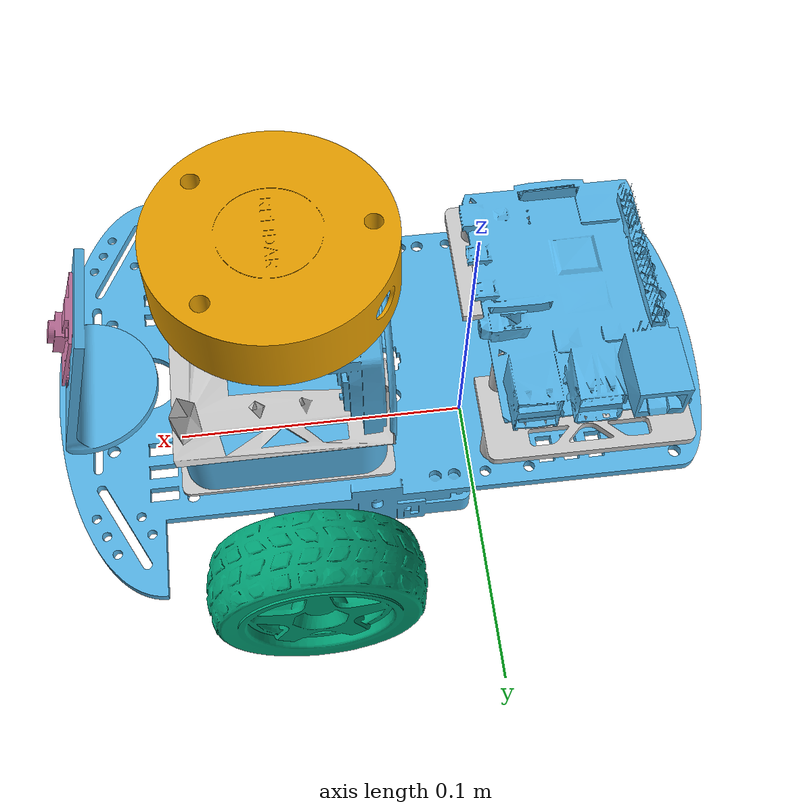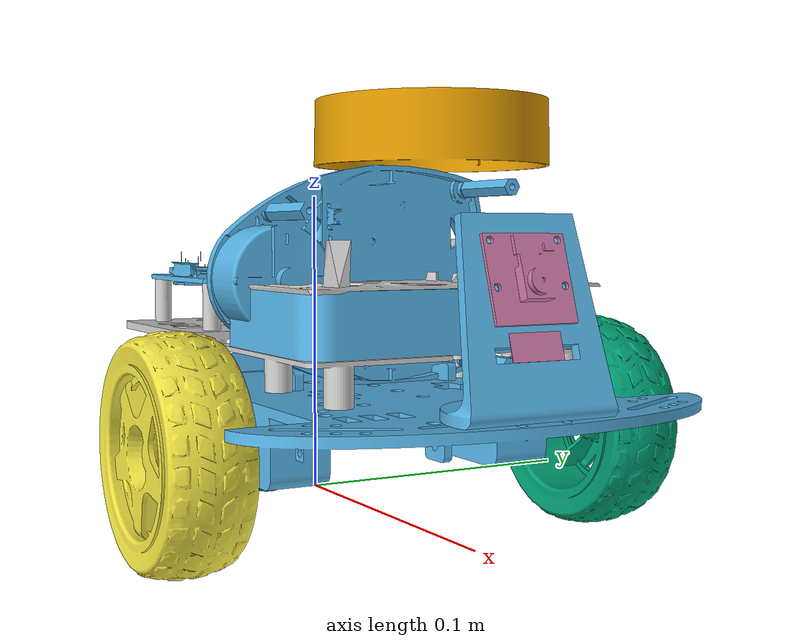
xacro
<?xml version="1.0" ?>
<robot name="lidarbot" xmlns:xacro="http://www.ros.org/wiki/xacro">

  <xacro:include filename="lidarbot_gz_core.xacro"/>
  <xacro:include filename="sensors.xacro"/>

  <!-- ros2control -->
  <ros2_control name="IgnitionSystem" type="system">
    <hardware>
      <plugin>ign_ros2_control/IgnitionSystem</plugin>
    </hardware>
    <joint name="left_wheel_joint">
      <command_interface name="velocity">
        <param name="min">-1</param>
        <param name="max">1</param>
      </command_interface>
      <state_interface name="velocity"/>
      <state_interface name="position"/>
    </joint>
    <joint name="right_wheel_joint">
      <command_interface name="velocity">
        <param name="min">-1</param>
        <param name="max">1</param>
      </command_interface>
      <state_interface name="velocity"/>
      <state_interface name="position"/>
    </joint>
  </ros2_control>

  <gazebo>
    <plugin filename="ign_ros2_control-system" name="ign_ros2_control::IgnitionROS2ControlPlugin">
      <parameters>$(find lidarbot_bringup)/config/controllers.yaml</parameters>
    </plugin>
  </gazebo>

</robot>

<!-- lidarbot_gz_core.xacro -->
<robot xmlns:xacro="http://ros.org/wiki/xacro">

  <xacro:include filename="$(find lidarbot_description)/urdf/inertial_macros.xacro"/>

  <!-- Robot's base properties -->
  <xacro:property name="base_length" value="0.21"/>
  <xacro:property name="base_width" value="0.11"/>
  <xacro:property name="base_height" value="0.035"/>

  <!-- Robot's wheel properties -->
  <xacro:property name="wheel_radius" value="0.0325"/>
  <xacro:property name="wheel_height" value="0.025"/>
  <xacro:property name="wheel_mass" value="0.031"/>

  <!-- Distance between centre of wheel and robot base -->
  <xacro:property name="wheel_zoff" value="0.0125"/>

  <link name="base_footprint"/>

   <joint name="base_joint" type="fixed">
     <parent link="base_footprint"/>
     <child link="base_link"/>
     <origin xyz="-0.076 0 ${(wheel_radius + wheel_zoff / 2)}" rpy="0 0 0"/>
   </joint>

  <!-- Robot base chasis-->
  <link name="base_link">
      <visual>
        <origin xyz="${base_length/2} 0 ${-wheel_zoff}" rpy="0 0 ${pi}"/>
          <geometry>
              <mesh filename="file://$(find lidarbot_description)/meshes/robot_chassis.dae" />
          </geometry>
      </visual>
      <collision>
        <origin xyz="${base_length/2} 0 ${-wheel_zoff}" rpy="0 0 0"/>
        <geometry>
          <box size="${base_length} ${base_width} ${base_height}"/>
        </geometry>
      </collision>

    <!-- Caster mount -->
      <visual name="caster_mount_visual">
          <origin xyz="0.0185 0 -0.0475" rpy="0 0 0"/>
        <geometry>
          <mesh filename="file://$(find lidarbot_description)/meshes/caster_mount.dae" />
        </geometry>
      </visual>
      <collision name="caster_mount_collision">
        <origin xyz="0.0185 0 -0.005" rpy="0 0 0"/>
        <geometry>
          <cylinder radius="0.023" length="0.0125"/>
        </geometry>
      </collision>

      <!-- Rpi stand -->
      <visual name="rpi_4_stand_visual">
        <origin xyz="0.045 0.015 0.031" rpy="${pi} 0 ${-pi}"/>
          <geometry>
              <mesh filename="file://$(find lidarbot_description)/meshes/rpi_stand.dae" />
          </geometry>
      </visual>
      <collision name="rpi_4_stand_collision">
        <origin xyz="0.045 0 0.017" rpy="0 0 ${pi/2}"/>
        <geometry>
          <box size="0.098 0.065 0.034"/>
        </geometry>
      </collision>

      <!-- Raspberry Pi -->
      <visual name="rpi_4_visual">
        <origin xyz="0.046 0.00245 0.033" rpy="0 0 ${pi/2}"/>
        <geometry>
          <mesh filename="file://$(find lidarbot_description)/meshes/rpi_4.dae"/>
        </geometry>
      </visual>
      <collision name="rpi_4_collision">
        <origin xyz="0.047 0.005 0.041" rpy="0 0 ${pi/2}"/>
        <geometry>
          <box size="0.09 0.06 0.02"/>
        </geometry>
      </collision>

      <!-- Power bank stand -->
      <visual name="power_bank_stand_visual">
        <origin xyz="0.138 0.015 0.031" rpy="${pi} 0 ${pi}"/>
        <geometry>
          <mesh filename="file://$(find lidarbot_description)/meshes/power_bank_stand.dae"/>
        </geometry>
      </visual>
      <collision name="power_bank_stand_collision">
        <origin xyz="0.138 0 0.0085" rpy="0 0 ${pi/2}"/>
        <geometry>
          <box size="0.098 0.065 0.015"/>
        </geometry>
      </collision>

      <!-- Power bank -->
      <visual name="power_bank_visual">
        <origin xyz="0.1685 0.04775 0.015" rpy="0 0 ${pi/2}"/>
        <geometry>
          <mesh filename="file://$(find lidarbot_description)/meshes/power_bank.dae"/>
        </geometry>
      </visual>
      <collision name="power_bank_collision">
        <origin xyz="0.138 0 0.025" rpy="0 0 ${pi/2}"/>
        <geometry>
          <box size="0.096 0.062 0.02"/>
        </geometry>
      </collision>

      <!-- Rplidar stand -->
      <visual name="rplidar_stand_visual">
        <origin xyz="0.138 0.015 0.017" rpy="0 0 ${-2*pi}"/>
        <geometry>
          <mesh filename="file://$(find lidarbot_description)/meshes/rplidar_stand.dae"/>
        </geometry>
      </visual>
      <collision name="rplidar_stand_collision">
        <origin xyz="0.138 0 0.04" rpy="0 0 ${pi/2}"/>
        <geometry>
          <box size="0.098 0.065 0.015"/>
        </geometry>
      </collision>

      <!-- Rplidar base -->
      <visual name="rplidar_base_visual">
        <origin xyz="0.13985 0.0087 0.037" rpy="0 0 ${-pi/2}"/>
          <geometry>
            <mesh filename="file://$(find lidarbot_description)/meshes/rplidar_base.dae"/>
          </geometry>
        </visual>
      <collision name="rplidar_base_collision">
        <origin xyz="0.138 0 0.056" rpy="0 0 ${-pi/2}"/>
        <geometry>
          <box size="0.11 0.072 0.035"/>
        </geometry>
      </collision>

      <!-- Camera mount -->
      <visual name="camera_mount_visual">
        <origin xyz="0.16 0.0335 0.001" rpy="0 0 ${pi}"/>
          <geometry>
            <mesh filename="file://$(find lidarbot_description)/meshes/rpi_camera_mount.dae"/>
          </geometry>
      </visual>
      <collision name="camera_mount_collision">
        <origin xyz="0.197 0.0 0.032" rpy="${pi/2} 0 ${pi/2}"/>
        <geometry>
          <box size="0.048 0.06 0.033"/>
        </geometry>
      </collision>

    <xacro:box_inertia mass="0.864" length="${base_length}" width="${base_width}" height="${base_height}">
      <origin xyz="0.105 0 0.0175" rpy="0 0 0"/>
    </xacro:box_inertia>
  </link>

  <!-- Left wheel -->
  <link name="left_wheel">
    <visual>
        <geometry>
          <mesh filename="file://$(find lidarbot_description)/meshes/right_wheel.dae" />
        </geometry>
    </visual>
    <collision>
      <origin xyz="0 0 -0.0065" rpy="0 0 0"/>
      <geometry>
        <sphere radius="${wheel_radius}"/>
      </geometry>
    </collision>

    <xacro:cylinder_inertia mass="${wheel_mass}" length="${wheel_height}" radius="${wheel_radius}">
      <origin xyz="0 0 0" rpy="0 0 0"/>
    </xacro:cylinder_inertia>
  </link>

  <joint name="left_wheel_joint" type="continuous">
    <parent link="base_link"/>
    <child link="left_wheel"/>
    <origin xyz="0.133 0.065 -${wheel_zoff}" rpy="-${pi/2} 0 ${pi}"/>
    <axis xyz="0 0 -1"/>
  </joint>

  <!-- Right wheel -->
  <link name="right_wheel">
    <visual>
      <geometry>
        <mesh filename="file://$(find lidarbot_description)/meshes/right_wheel.dae"/>
      </geometry>
    </visual>
    <collision>
      <origin xyz="0 0 -0.0065" rpy="0 0 0"/>
      <geometry>
        <sphere radius="${wheel_radius}"/>
      </geometry>
    </collision>

    <xacro:cylinder_inertia mass="${wheel_mass}" length="${wheel_height}" radius="${wheel_radius}">
      <origin xyz="0 0 0" rpy="0 0 0"/>
    </xacro:cylinder_inertia>
  </link>

  <joint name="right_wheel_joint" type="continuous">
    <parent link="base_link"/>
    <child link="right_wheel"/>
    <origin xyz="0.133 -0.065 -${wheel_zoff}" rpy="${pi/2} 0 ${-pi}"/>
    <axis xyz="0 0 1"/>
  </joint>

  <!-- Caster wheel -->
  <link name="caster_wheel">
    <visual>
      <geometry>
        <mesh filename="file://$(find lidarbot_description)/meshes/caster_wheel.dae"/>
      </geometry>
    </visual>
    <collision>
      <origin xyz="0 0 -0.001" rpy="0 0 ${pi/2}"/>
      <geometry>
        <sphere radius="0.015"/>
      </geometry>
    </collision>

    <xacro:sphere_inertia mass="0.033" radius="0.025">
      <origin xyz="0 0 0" rpy="0 0 0"/>
    </xacro:sphere_inertia>
  </link>

  <joint name="caster_wheel_joint" type="fixed">
    <parent link="base_link"/>
    <child link="caster_wheel"/>
    <origin xyz="0.028 0 -0.031" rpy="0 0 ${pi/2}"/>
  </joint>

  <gazebo reference="caster_wheel">
    <mu1 value="0.001"/>
    <mu2 value="0.001"/>
  </gazebo>

  <gazebo reference="left_wheel">
    <mu1 value="1.16"/>
    <mu2 value="1.16"/>
  </gazebo>

  <gazebo reference="right_wheel">
    <mu1 value="1.16"/>
    <mu2 value="1.16"/>
  </gazebo>

</robot>

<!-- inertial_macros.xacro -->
<robot xmlns:xacro="http://ros.org/wiki/xacro">

    <!-- Some standard inertial calculations, obtained from: https://en.wikipedia.org/wiki/List_of_moments_of_inertia -->
    <xacro:macro name="box_inertia" params="mass length width height *origin">
        <inertial>
            <xacro:insert_block name="origin"/>
            <mass value="${mass}"/>
            <inertia ixx="${(mass/12) * (width*width + height*height)}" ixy="0.0" ixz="0.0"
                    iyy="${(mass/12) * (length*length + height*height)}" iyz="0.0"
                    izz="${(mass/12) * (length*length + width*width)}"/>
        </inertial>
    </xacro:macro>

    <xacro:macro name="sphere_inertia" params="mass radius *origin">
        <inertial>
            <xacro:insert_block name="origin"/>
            <mass value="${mass}"/>
            <inertia ixx="${(2/5) * mass * (radius*radius)}" ixy="0.0" ixz="0.0"
                    iyy="${(2/5) * mass * (radius*radius)}" iyz="0.0"
                    izz="${(2/5) * mass * (radius*radius)}"/>
        </inertial>
    </xacro:macro>

    <xacro:macro name="cylinder_inertia" params="mass length radius *origin">
        <inertial>
            <xacro:insert_block name="origin"/>
            <mass value="${mass}" />
            <inertia ixx="${(1/12) * mass * (3*radius*radius + length*length)}" ixy="0.0" ixz="0.0"
                    iyy="${(1/12) * mass * (3*radius*radius + length*length)}" iyz="0.0"
                    izz="${(1/2) * mass * (radius*radius)}" />
        </inertial>
    </xacro:macro>

</robot>

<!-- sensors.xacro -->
<robot xmlns:xacro="http://ros.org/wiki/xacro">

<!-- Imu sensor -->
  <link name="imu_link">
    <visual name="imu_visual">
      <geometry>
        <mesh filename="file://$(find lidarbot_description)/meshes/MPU6050.dae"/>
      </geometry>
    </visual>
  </link>

  <joint name="imu_joint" type="fixed">
    <parent link="base_link"/>
    <child link="imu_link"/>
    <origin xyz="0.045 0 0.0175" rpy="0 0 0"/>
    </joint>

  <gazebo reference="imu_link">
    <sensor name="mpu6050_imu" type="imu">
    <always_on>true</always_on>
    <update_rate>200</update_rate>
    <topic>imu_broadcaster/imu</topic>
    <imu>
      <angular_velocity>
        <x>
          <noise type="gaussian">
            <mean>0.0</mean>
            <stddev>2e-4</stddev>
          </noise>
        </x>
        <y>
          <noise type="gaussian">
            <mean>0.0</mean>
            <stddev>2e-4</stddev>
          </noise>
        </y>
        <z>
          <noise type="gaussian">
            <mean>0.0</mean>
            <stddev>2e-4</stddev>
          </noise>
        </z>
      </angular_velocity>
      <linear_acceleration>
        <x>
          <noise type="gaussian">
            <mean>0.0</mean>
            <stddev>1.7e-2</stddev>
          </noise>
        </x>
        <y>
          <noise type="gaussian">
            <mean>0.0</mean>
            <stddev>1.7e-2</stddev>
          </noise>
        </y>
        <z>
          <noise type="gaussian">
            <mean>0.0</mean>
            <stddev>1.7e-2</stddev>
          </noise>
        </z>
      </linear_acceleration>
      <orientation>
        <x>
          <noise type="gaussian">
            <mean>0.0</mean>
            <stddev>2e-3</stddev>
           </noise>
        </x>
        <y>
          <noise type="gaussian">
            <mean>0.0</mean>
            <stddev>2e-3</stddev>
          </noise>
        </y>
        <z>
          <noise type="gaussian">
            <mean>0.0</mean>
            <stddev>2e-3</stddev>
          </noise>
        </z>
      </orientation>
     </imu>
   </sensor>
  </gazebo>

  <!-- Camera -->
  <link name="camera_link">
    <visual>
      <origin xyz="-0.0115 0.0125 0.0052" rpy="1.8745 ${pi} ${pi/2}"/>
      <geometry>
        <mesh filename="file://$(find lidarbot_description)/meshes/rpi_camera.dae"/>
      </geometry>
    </visual>
  </link>

  <joint name="camera_joint" type="fixed">
    <parent link="base_link"/>
    <child link="camera_link"/>
    <origin xyz="0.205 0 0.0425" rpy="0 0 0"/>
  </joint>

  <link name="camera_link_optical"></link>

  <joint name="camera_optical_joint" type="fixed">
    <parent link="camera_link"/>
    <child link="camera_link_optical"/>
    <origin xyz="0 0 0" rpy="${-pi/2} 0 ${-pi/2}"/>
  </joint>

  <gazebo reference="camera_link">
    <sensor name="camera" type="camera">
      <always_on>true</always_on>
      <visualize>true</visualize>
      <update_rate>30</update_rate>
      <topic>camera/image_raw</topic>
      <gz_frame_id>camera_rgb_frame</gz_frame_id>
      <camera name="camera">
        <camera_info_topic>camera/camera_info</camera_info_topic>
          <horizontal_fov>0.934</horizontal_fov>
          <image>
            <format>R8G8B8</format>
            <width>640</width>
            <height>480</height>
          </image>
          <clip>
            <near>0.05</near>
            <far>8.0</far>
          </clip>
      </camera>
    </sensor>
  </gazebo>

  <!-- Lidar -->
  <link name="lidar_link">
    <visual>
      <origin xyz="0 -0.0009 -0.011" rpy="0 0 0"/>
      <geometry>
        <mesh filename="file://$(find lidarbot_description)/meshes/rplidar_top.dae"/>
      </geometry>
    </visual>
    <collision>
      <origin xyz="0 -0.0028 0" rpy="0 0 0"/>
      <geometry>
        <cylinder radius="0.037" length="0.021"/>
      </geometry>
    </collision>

    <xacro:cylinder_inertia mass="0.07" length="0.021" radius="0.037">
      <origin xyz="0 0 0" rpy="0 0 0"/>
    </xacro:cylinder_inertia>
  </link>

  <joint name="lidar_joint" type="fixed">
    <parent link="base_link"/>
    <child link="lidar_link"/>
    <origin xyz="0.1385 0.0095 0.08" rpy="0 0 ${-pi/2}"/>
    <axis xyz="0 0 1"/>
  </joint>

  <gazebo reference="lidar_link">
    <sensor name="lidar" type="gpu_lidar">
      <always_on>true</always_on>
      <visualize>true</visualize>
      <update_rate>10</update_rate>
      <topic>scan</topic>
      <gz_frame_id>base_scan</gz_frame_id>
      <lidar>
        <scan>
          <horizontal>
            <samples>360</samples>
            <min_angle>-3.14</min_angle>
            <max_angle>3.14</max_angle>
          </horizontal>
        </scan>
        <range>
          <min>0.15</min>
          <max>6.0</max>
          <resolution>0.01500</resolution>
        </range>
        <noise>
          <type>gaussian</type>
          <mean>0.0</mean>
          <stddev>0.01</stddev>
        </noise>
      </lidar>
    </sensor>
  </gazebo>

</robot>
